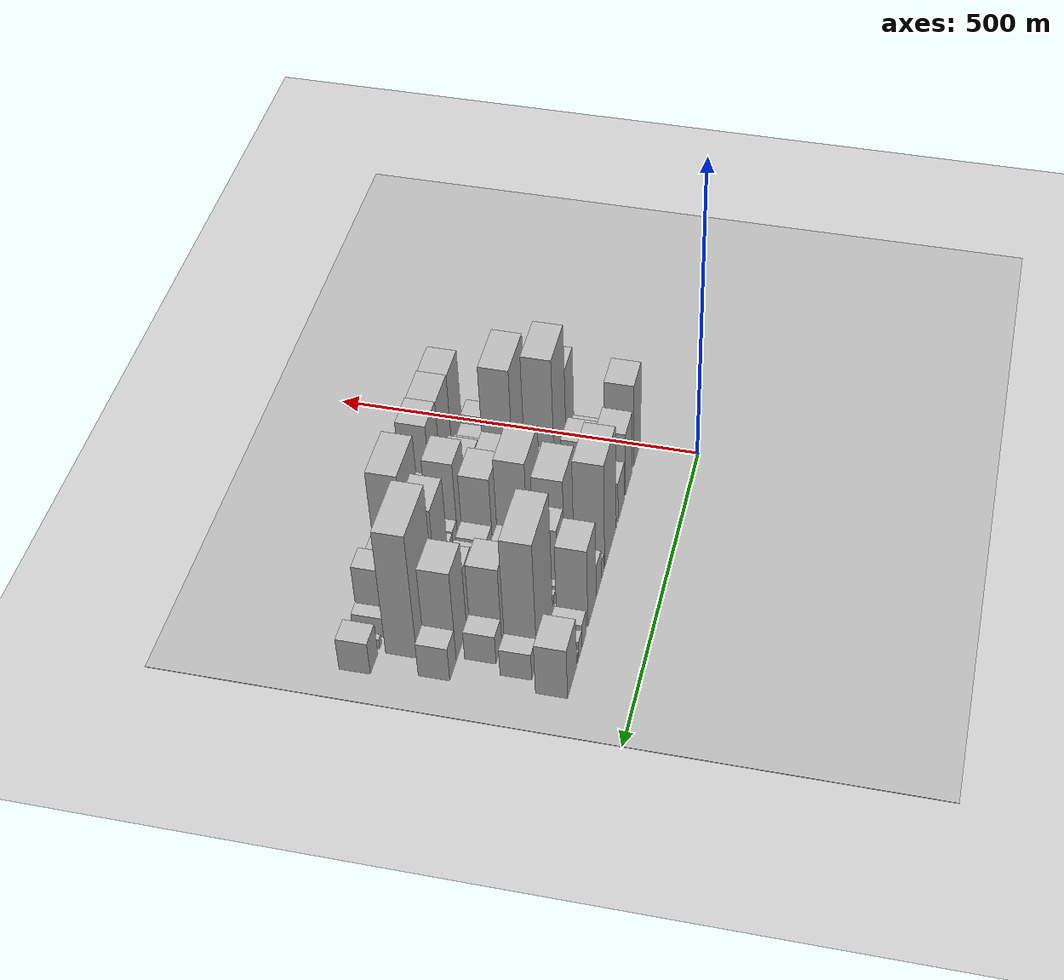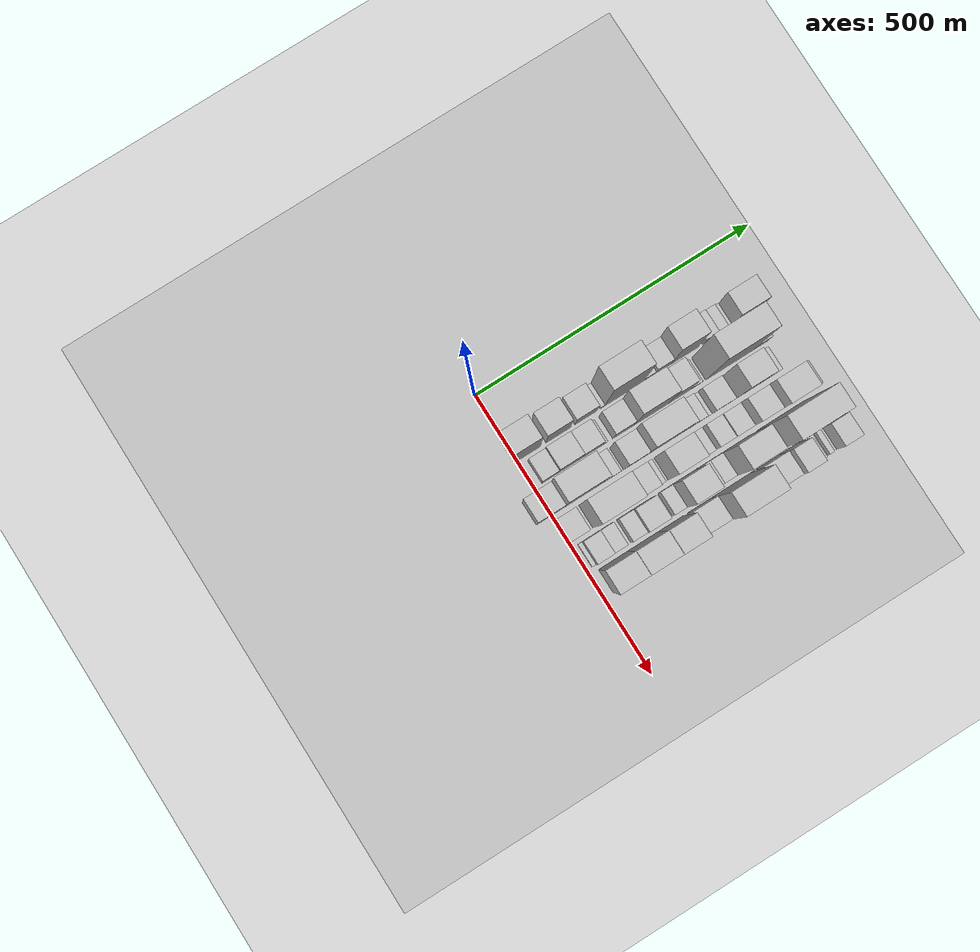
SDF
<sdf version="1.6">
 <world name="default">
  <include><name>ground_plane_1</name><uri>model://HANNAS_ground_plane</uri></include>
  <include>
   <name>ground_plane_2</name>
   <uri>model://HANNAS_ground_plane</uri>
   <pose>100 0 0  0 0 0</pose>
  </include>
  <model name="building_21">
   <static>1</static>
   <pose>100.0000 18.9838 0 0.000000 0.000000 0.000000</pose>
   <link name="link">
    <pose>0 0 75.00 0 0 0</pose>
    <collision name="collision"><geometry><box><size>40.0000 47.2922 150.0000</size></box></geometry></collision>
    <visual name="visual">
     <cast_shadows>0</cast_shadows>
     <geometry><box><size>40.0000 47.2922 150.0000</size></box></geometry>
     <material>
      <script>
       <uri>model://HANNAS_wall/materials/scripts</uri>
       <uri>model://HANNAS_wall/materials/textures</uri>
       <name>vrc/HANNAS_wall</name>
      </script>
     </material>
    </visual>
   </link>
  </model>
  <model name="building_22">
   <static>1</static>
   <pose>100.0000 74.6798 0 0.000000 0.000000 0.000000</pose>
   <link name="link">
    <pose>0 0 57.00 0 0 0</pose>
    <collision name="collision"><geometry><box><size>40.0000 44.0999 114.0000</size></box></geometry></collision>
    <visual name="visual">
     <cast_shadows>0</cast_shadows>
     <geometry><box><size>40.0000 44.0999 114.0000</size></box></geometry>
     <material>
      <script>
       <uri>model://HANNAS_wall/materials/scripts</uri>
       <uri>model://HANNAS_wall/materials/textures</uri>
       <name>vrc/HANNAS_wall</name>
      </script>
     </material>
    </visual>
   </link>
  </model>
  <model name="building_23">
   <static>1</static>
   <pose>100.0000 124.8819 0 0.000000 0.000000 0.000000</pose>
   <link name="link">
    <pose>0 0 36.00 0 0 0</pose>
    <collision name="collision"><geometry><box><size>40.0000 40.3041 72.0000</size></box></geometry></collision>
    <visual name="visual">
     <cast_shadows>0</cast_shadows>
     <geometry><box><size>40.0000 40.3041 72.0000</size></box></geometry>
     <material>
      <script>
       <uri>model://HANNAS_wall/materials/scripts</uri>
       <uri>model://HANNAS_wall/materials/textures</uri>
       <name>vrc/HANNAS_wall</name>
      </script>
     </material>
    </visual>
   </link>
  </model>
  <model name="building_24">
   <static>1</static>
   <pose>100.0000 154.7181 0 0.000000 0.000000 0.000000</pose>
   <link name="link">
    <pose>0 0 9.00 0 0 0</pose>
    <collision name="collision"><geometry><box><size>40.0000 7.3683 18.0000</size></box></geometry></collision>
    <visual name="visual">
     <cast_shadows>0</cast_shadows>
     <geometry><box><size>40.0000 7.3683 18.0000</size></box></geometry>
     <material>
      <script>
       <uri>model://HANNAS_wall/materials/scripts</uri>
       <uri>model://HANNAS_wall/materials/textures</uri>
       <name>vrc/HANNAS_wall</name>
      </script>
     </material>
    </visual>
   </link>
  </model>
  <model name="building_25">
   <static>1</static>
   <pose>100.0000 193.5216 0 0.000000 0.000000 0.000000</pose>
   <link name="link">
    <pose>0 0 94.50 0 0 0</pose>
    <collision name="collision"><geometry><box><size>40.0000 70.2388 189.0000</size></box></geometry></collision>
    <visual name="visual">
     <cast_shadows>0</cast_shadows>
     <geometry><box><size>40.0000 70.2388 189.0000</size></box></geometry>
     <material>
      <script>
       <uri>model://HANNAS_wall/materials/scripts</uri>
       <uri>model://HANNAS_wall/materials/textures</uri>
       <name>vrc/HANNAS_wall</name>
      </script>
     </material>
    </visual>
   </link>
  </model>
  <model name="building_26">
   <static>1</static>
   <pose>100.0000 240.4737 0 0.000000 0.000000 0.000000</pose>
   <link name="link">
    <pose>0 0 16.50 0 0 0</pose>
    <collision name="collision"><geometry><box><size>40.0000 17.6654 33.0000</size></box></geometry></collision>
    <visual name="visual">
     <cast_shadows>0</cast_shadows>
     <geometry><box><size>40.0000 17.6654 33.0000</size></box></geometry>
     <material>
      <script>
       <uri>model://HANNAS_wall/materials/scripts</uri>
       <uri>model://HANNAS_wall/materials/textures</uri>
       <name>vrc/HANNAS_wall</name>
      </script>
     </material>
    </visual>
   </link>
  </model>
  <model name="building_27">
   <static>1</static>
   <pose>100.0000 264.1507 0 0.000000 0.000000 0.000000</pose>
   <link name="link">
    <pose>0 0 28.50 0 0 0</pose>
    <collision name="collision"><geometry><box><size>40.0000 29.6887 57.0000</size></box></geometry></collision>
    <visual name="visual">
     <cast_shadows>0</cast_shadows>
     <geometry><box><size>40.0000 29.6887 57.0000</size></box></geometry>
     <material>
      <script>
       <uri>model://HANNAS_wall/materials/scripts</uri>
       <uri>model://HANNAS_wall/materials/textures</uri>
       <name>vrc/HANNAS_wall</name>
      </script>
     </material>
    </visual>
   </link>
  </model>
  <model name="building_28">
   <static>1</static>
   <pose>100.0000 303.5925 0 0.000000 0.000000 0.000000</pose>
   <link name="link">
    <pose>0 0 70.50 0 0 0</pose>
    <collision name="collision"><geometry><box><size>40.0000 49.1949 141.0000</size></box></geometry></collision>
    <visual name="visual">
     <cast_shadows>0</cast_shadows>
     <geometry><box><size>40.0000 49.1949 141.0000</size></box></geometry>
     <material>
      <script>
       <uri>model://HANNAS_wall/materials/scripts</uri>
       <uri>model://HANNAS_wall/materials/textures</uri>
       <name>vrc/HANNAS_wall</name>
      </script>
     </material>
    </visual>
   </link>
  </model>
  <model name="building_29">
   <static>1</static>
   <pose>100.0000 349.4941 0 0.000000 0.000000 0.000000</pose>
   <link name="link">
    <pose>0 0 21.00 0 0 0</pose>
    <collision name="collision"><geometry><box><size>40.0000 24.6083 42.0000</size></box></geometry></collision>
    <visual name="visual">
     <cast_shadows>0</cast_shadows>
     <geometry><box><size>40.0000 24.6083 42.0000</size></box></geometry>
     <material>
      <script>
       <uri>model://HANNAS_wall/materials/scripts</uri>
       <uri>model://HANNAS_wall/materials/textures</uri>
       <name>vrc/HANNAS_wall</name>
      </script>
     </material>
    </visual>
   </link>
  </model>
  <model name="building_30">
   <static>1</static>
   <pose>100.0000 371.0547 0 0.000000 0.000000 0.000000</pose>
   <link name="link">
    <pose>0 0 16.50 0 0 0</pose>
    <collision name="collision"><geometry><box><size>40.0000 18.5130 33.0000</size></box></geometry></collision>
    <visual name="visual">
     <cast_shadows>0</cast_shadows>
     <geometry><box><size>40.0000 18.5130 33.0000</size></box></geometry>
     <material>
      <script>
       <uri>model://HANNAS_wall/materials/scripts</uri>
       <uri>model://HANNAS_wall/materials/textures</uri>
       <name>vrc/HANNAS_wall</name>
      </script>
     </material>
    </visual>
   </link>
  </model>
  <model name="building_31">
   <static>1</static>
   <pose>100.0000 384.6112 0 0.000000 0.000000 0.000000</pose>
   <link name="link">
    <pose>0 0 9.00 0 0 0</pose>
    <collision name="collision"><geometry><box><size>40.0000 8.6000 18.0000</size></box></geometry></collision>
    <visual name="visual">
     <cast_shadows>0</cast_shadows>
     <geometry><box><size>40.0000 8.6000 18.0000</size></box></geometry>
     <material>
      <script>
       <uri>model://HANNAS_wall/materials/scripts</uri>
       <uri>model://HANNAS_wall/materials/textures</uri>
       <name>vrc/HANNAS_wall</name>
      </script>
     </material>
    </visual>
   </link>
  </model>
  <model name="building_32">
   <static>1</static>
   <pose>100.0000 417.4044 0 0.000000 0.000000 0.000000</pose>
   <link name="link">
    <pose>0 0 45.00 0 0 0</pose>
    <collision name="collision"><geometry><box><size>40.0000 50.9864 90.0000</size></box></geometry></collision>
    <visual name="visual">
     <cast_shadows>0</cast_shadows>
     <geometry><box><size>40.0000 50.9864 90.0000</size></box></geometry>
     <material>
      <script>
       <uri>model://HANNAS_wall/materials/scripts</uri>
       <uri>model://HANNAS_wall/materials/textures</uri>
       <name>vrc/HANNAS_wall</name>
      </script>
     </material>
    </visual>
   </link>
  </model>
  <model name="building_64">
   <static>1</static>
   <pose>149.0000 29.2394 0 0.000000 0.000000 0.000000</pose>
   <link name="link">
    <pose>0 0 27.00 0 0 0</pose>
    <collision name="collision"><geometry><box><size>40.0000 29.9875 54.0000</size></box></geometry></collision>
    <visual name="visual">
     <cast_shadows>0</cast_shadows>
     <geometry><box><size>40.0000 29.9875 54.0000</size></box></geometry>
     <material>
      <script>
       <uri>model://HANNAS_wall/materials/scripts</uri>
       <uri>model://HANNAS_wall/materials/textures</uri>
       <name>vrc/HANNAS_wall</name>
      </script>
     </material>
    </visual>
   </link>
  </model>
  <model name="building_65">
   <static>1</static>
   <pose>149.0000 65.8894 0 0.000000 0.000000 0.000000</pose>
   <link name="link">
    <pose>0 0 39.00 0 0 0</pose>
    <collision name="collision"><geometry><box><size>40.0000 43.3125 78.0000</size></box></geometry></collision>
    <visual name="visual">
     <cast_shadows>0</cast_shadows>
     <geometry><box><size>40.0000 43.3125 78.0000</size></box></geometry>
     <material>
      <script>
       <uri>model://HANNAS_wall/materials/scripts</uri>
       <uri>model://HANNAS_wall/materials/textures</uri>
       <name>vrc/HANNAS_wall</name>
      </script>
     </material>
    </visual>
   </link>
  </model>
  <model name="building_66">
   <static>1</static>
   <pose>149.0000 105.7327 0 0.000000 0.000000 0.000000</pose>
   <link name="link">
    <pose>0 0 33.00 0 0 0</pose>
    <collision name="collision"><geometry><box><size>40.0000 36.3740 66.0000</size></box></geometry></collision>
    <visual name="visual">
     <cast_shadows>0</cast_shadows>
     <geometry><box><size>40.0000 36.3740 66.0000</size></box></geometry>
     <material>
      <script>
       <uri>model://HANNAS_wall/materials/scripts</uri>
       <uri>model://HANNAS_wall/materials/textures</uri>
       <name>vrc/HANNAS_wall</name>
      </script>
     </material>
    </visual>
   </link>
  </model>
  <model name="building_67">
   <static>1</static>
   <pose>149.0000 128.1464 0 0.000000 0.000000 0.000000</pose>
   <link name="link">
    <pose>0 0 9.00 0 0 0</pose>
    <collision name="collision"><geometry><box><size>40.0000 8.4535 18.0000</size></box></geometry></collision>
    <visual name="visual">
     <cast_shadows>0</cast_shadows>
     <geometry><box><size>40.0000 8.4535 18.0000</size></box></geometry>
     <material>
      <script>
       <uri>model://HANNAS_wall/materials/scripts</uri>
       <uri>model://HANNAS_wall/materials/textures</uri>
       <name>vrc/HANNAS_wall</name>
      </script>
     </material>
    </visual>
   </link>
  </model>
  <model name="building_68">
   <static>1</static>
   <pose>149.0000 160.7705 0 0.000000 0.000000 0.000000</pose>
   <link name="link">
    <pose>0 0 36.00 0 0 0</pose>
    <collision name="collision"><geometry><box><size>40.0000 36.7947 72.0000</size></box></geometry></collision>
    <visual name="visual">
     <cast_shadows>0</cast_shadows>
     <geometry><box><size>40.0000 36.7947 72.0000</size></box></geometry>
     <material>
      <script>
       <uri>model://HANNAS_wall/materials/scripts</uri>
       <uri>model://HANNAS_wall/materials/textures</uri>
       <name>vrc/HANNAS_wall</name>
      </script>
     </material>
    </visual>
   </link>
  </model>
  <model name="building_69">
   <static>1</static>
   <pose>149.0000 210.8949 0 0.000000 0.000000 0.000000</pose>
   <link name="link">
    <pose>0 0 82.50 0 0 0</pose>
    <collision name="collision"><geometry><box><size>40.0000 63.4541 165.0000</size></box></geometry></collision>
    <visual name="visual">
     <cast_shadows>0</cast_shadows>
     <geometry><box><size>40.0000 63.4541 165.0000</size></box></geometry>
     <material>
      <script>
       <uri>model://HANNAS_wall/materials/scripts</uri>
       <uri>model://HANNAS_wall/materials/textures</uri>
       <name>vrc/HANNAS_wall</name>
      </script>
     </material>
    </visual>
   </link>
  </model>
  <model name="building_70">
   <static>1</static>
   <pose>149.0000 262.1376 0 0.000000 0.000000 0.000000</pose>
   <link name="link">
    <pose>0 0 58.50 0 0 0</pose>
    <collision name="collision"><geometry><box><size>40.0000 39.0314 117.0000</size></box></geometry></collision>
    <visual name="visual">
     <cast_shadows>0</cast_shadows>
     <geometry><box><size>40.0000 39.0314 117.0000</size></box></geometry>
     <material>
      <script>
       <uri>model://HANNAS_wall/materials/scripts</uri>
       <uri>model://HANNAS_wall/materials/textures</uri>
       <name>vrc/HANNAS_wall</name>
      </script>
     </material>
    </visual>
   </link>
  </model>
  <model name="building_71">
   <static>1</static>
   <pose>149.0000 287.4748 0 0.000000 0.000000 0.000000</pose>
   <link name="link">
    <pose>0 0 13.50 0 0 0</pose>
    <collision name="collision"><geometry><box><size>40.0000 11.6430 27.0000</size></box></geometry></collision>
    <visual name="visual">
     <cast_shadows>0</cast_shadows>
     <geometry><box><size>40.0000 11.6430 27.0000</size></box></geometry>
     <material>
      <script>
       <uri>model://HANNAS_wall/materials/scripts</uri>
       <uri>model://HANNAS_wall/materials/textures</uri>
       <name>vrc/HANNAS_wall</name>
      </script>
     </material>
    </visual>
   </link>
  </model>
  <model name="building_72">
   <static>1</static>
   <pose>149.0000 298.4466 0 0.000000 0.000000 0.000000</pose>
   <link name="link">
    <pose>0 0 10.50 0 0 0</pose>
    <collision name="collision"><geometry><box><size>40.0000 10.3007 21.0000</size></box></geometry></collision>
    <visual name="visual">
     <cast_shadows>0</cast_shadows>
     <geometry><box><size>40.0000 10.3007 21.0000</size></box></geometry>
     <material>
      <script>
       <uri>model://HANNAS_wall/materials/scripts</uri>
       <uri>model://HANNAS_wall/materials/textures</uri>
       <name>vrc/HANNAS_wall</name>
      </script>
     </material>
    </visual>
   </link>
  </model>
  <model name="building_73">
   <static>1</static>
   <pose>149.0000 354.4526 0 0.000000 0.000000 0.000000</pose>
   <link name="link">
    <pose>0 0 108.00 0 0 0</pose>
    <collision name="collision"><geometry><box><size>40.0000 85.7112 216.0000</size></box></geometry></collision>
    <visual name="visual">
     <cast_shadows>0</cast_shadows>
     <geometry><box><size>40.0000 85.7112 216.0000</size></box></geometry>
     <material>
      <script>
       <uri>model://HANNAS_wall/materials/scripts</uri>
       <uri>model://HANNAS_wall/materials/textures</uri>
       <name>vrc/HANNAS_wall</name>
      </script>
     </material>
    </visual>
   </link>
  </model>
  <model name="building_74">
   <static>1</static>
   <pose>149.0000 410.8304 0 0.000000 0.000000 0.000000</pose>
   <link name="link">
    <pose>0 0 24.00 0 0 0</pose>
    <collision name="collision"><geometry><box><size>40.0000 27.0444 48.0000</size></box></geometry></collision>
    <visual name="visual">
     <cast_shadows>0</cast_shadows>
     <geometry><box><size>40.0000 27.0444 48.0000</size></box></geometry>
     <material>
      <script>
       <uri>model://HANNAS_wall/materials/scripts</uri>
       <uri>model://HANNAS_wall/materials/textures</uri>
       <name>vrc/HANNAS_wall</name>
      </script>
     </material>
    </visual>
   </link>
  </model>
  <model name="building_110">
   <static>1</static>
   <pose>198.0000 -3.1251 0 0.000000 0.000000 0.000000</pose>
   <link name="link">
    <pose>0 0 69.00 0 0 0</pose>
    <collision name="collision"><geometry><box><size>40.0000 47.3952 138.0000</size></box></geometry></collision>
    <visual name="visual">
     <cast_shadows>0</cast_shadows>
     <geometry><box><size>40.0000 47.3952 138.0000</size></box></geometry>
     <material>
      <script>
       <uri>model://HANNAS_wall/materials/scripts</uri>
       <uri>model://HANNAS_wall/materials/textures</uri>
       <name>vrc/HANNAS_wall</name>
      </script>
     </material>
    </visual>
   </link>
  </model>
  <model name="building_111">
   <static>1</static>
   <pose>198.0000 55.0697 0 0.000000 0.000000 0.000000</pose>
   <link name="link">
    <pose>0 0 109.50 0 0 0</pose>
    <collision name="collision"><geometry><box><size>40.0000 68.9944 219.0000</size></box></geometry></collision>
    <visual name="visual">
     <cast_shadows>0</cast_shadows>
     <geometry><box><size>40.0000 68.9944 219.0000</size></box></geometry>
     <material>
      <script>
       <uri>model://HANNAS_wall/materials/scripts</uri>
       <uri>model://HANNAS_wall/materials/textures</uri>
       <name>vrc/HANNAS_wall</name>
      </script>
     </material>
    </visual>
   </link>
  </model>
  <model name="building_112">
   <static>1</static>
   <pose>198.0000 105.5584 0 0.000000 0.000000 0.000000</pose>
   <link name="link">
    <pose>0 0 27.00 0 0 0</pose>
    <collision name="collision"><geometry><box><size>40.0000 31.9829 54.0000</size></box></geometry></collision>
    <visual name="visual">
     <cast_shadows>0</cast_shadows>
     <geometry><box><size>40.0000 31.9829 54.0000</size></box></geometry>
     <material>
      <script>
       <uri>model://HANNAS_wall/materials/scripts</uri>
       <uri>model://HANNAS_wall/materials/textures</uri>
       <name>vrc/HANNAS_wall</name>
      </script>
     </material>
    </visual>
   </link>
  </model>
  <model name="building_113">
   <static>1</static>
   <pose>198.0000 148.9393 0 0.000000 0.000000 0.000000</pose>
   <link name="link">
    <pose>0 0 52.50 0 0 0</pose>
    <collision name="collision"><geometry><box><size>40.0000 36.7788 105.0000</size></box></geometry></collision>
    <visual name="visual">
     <cast_shadows>0</cast_shadows>
     <geometry><box><size>40.0000 36.7788 105.0000</size></box></geometry>
     <material>
      <script>
       <uri>model://HANNAS_wall/materials/scripts</uri>
       <uri>model://HANNAS_wall/materials/textures</uri>
       <name>vrc/HANNAS_wall</name>
      </script>
     </material>
    </visual>
   </link>
  </model>
  <model name="building_114">
   <static>1</static>
   <pose>198.0000 202.2660 0 0.000000 0.000000 0.000000</pose>
   <link name="link">
    <pose>0 0 90.00 0 0 0</pose>
    <collision name="collision"><geometry><box><size>40.0000 69.8747 180.0000</size></box></geometry></collision>
    <visual name="visual">
     <cast_shadows>0</cast_shadows>
     <geometry><box><size>40.0000 69.8747 180.0000</size></box></geometry>
     <material>
      <script>
       <uri>model://HANNAS_wall/materials/scripts</uri>
       <uri>model://HANNAS_wall/materials/textures</uri>
       <name>vrc/HANNAS_wall</name>
      </script>
     </material>
    </visual>
   </link>
  </model>
  <model name="building_115">
   <static>1</static>
   <pose>198.0000 255.5788 0 0.000000 0.000000 0.000000</pose>
   <link name="link">
    <pose>0 0 31.50 0 0 0</pose>
    <collision name="collision"><geometry><box><size>40.0000 36.7509 63.0000</size></box></geometry></collision>
    <visual name="visual">
     <cast_shadows>0</cast_shadows>
     <geometry><box><size>40.0000 36.7509 63.0000</size></box></geometry>
     <material>
      <script>
       <uri>model://HANNAS_wall/materials/scripts</uri>
       <uri>model://HANNAS_wall/materials/textures</uri>
       <name>vrc/HANNAS_wall</name>
      </script>
     </material>
    </visual>
   </link>
  </model>
  <model name="building_116">
   <static>1</static>
   <pose>198.0000 285.5694 0 0.000000 0.000000 0.000000</pose>
   <link name="link">
    <pose>0 0 7.50 0 0 0</pose>
    <collision name="collision"><geometry><box><size>40.0000 7.2301 15.0000</size></box></geometry></collision>
    <visual name="visual">
     <cast_shadows>0</cast_shadows>
     <geometry><box><size>40.0000 7.2301 15.0000</size></box></geometry>
     <material>
      <script>
       <uri>model://HANNAS_wall/materials/scripts</uri>
       <uri>model://HANNAS_wall/materials/textures</uri>
       <name>vrc/HANNAS_wall</name>
      </script>
     </material>
    </visual>
   </link>
  </model>
  <model name="building_117">
   <static>1</static>
   <pose>198.0000 306.8928 0 0.000000 0.000000 0.000000</pose>
   <link name="link">
    <pose>0 0 30.00 0 0 0</pose>
    <collision name="collision"><geometry><box><size>40.0000 35.4167 60.0000</size></box></geometry></collision>
    <visual name="visual">
     <cast_shadows>0</cast_shadows>
     <geometry><box><size>40.0000 35.4167 60.0000</size></box></geometry>
     <material>
      <script>
       <uri>model://HANNAS_wall/materials/scripts</uri>
       <uri>model://HANNAS_wall/materials/textures</uri>
       <name>vrc/HANNAS_wall</name>
      </script>
     </material>
    </visual>
   </link>
  </model>
  <model name="building_118">
   <static>1</static>
   <pose>198.0000 328.8992 0 0.000000 0.000000 0.000000</pose>
   <link name="link">
    <pose>0 0 9.00 0 0 0</pose>
    <collision name="collision"><geometry><box><size>40.0000 8.5960 18.0000</size></box></geometry></collision>
    <visual name="visual">
     <cast_shadows>0</cast_shadows>
     <geometry><box><size>40.0000 8.5960 18.0000</size></box></geometry>
     <material>
      <script>
       <uri>model://HANNAS_wall/materials/scripts</uri>
       <uri>model://HANNAS_wall/materials/textures</uri>
       <name>vrc/HANNAS_wall</name>
      </script>
     </material>
    </visual>
   </link>
  </model>
  <model name="building_119">
   <static>1</static>
   <pose>198.0000 356.1286 0 0.000000 0.000000 0.000000</pose>
   <link name="link">
    <pose>0 0 70.50 0 0 0</pose>
    <collision name="collision"><geometry><box><size>40.0000 45.8629 141.0000</size></box></geometry></collision>
    <visual name="visual">
     <cast_shadows>0</cast_shadows>
     <geometry><box><size>40.0000 45.8629 141.0000</size></box></geometry>
     <material>
      <script>
       <uri>model://HANNAS_wall/materials/scripts</uri>
       <uri>model://HANNAS_wall/materials/textures</uri>
       <name>vrc/HANNAS_wall</name>
      </script>
     </material>
    </visual>
   </link>
  </model>
  <model name="building_120">
   <static>1</static>
   <pose>198.0000 393.8148 0 0.000000 0.000000 0.000000</pose>
   <link name="link">
    <pose>0 0 25.50 0 0 0</pose>
    <collision name="collision"><geometry><box><size>40.0000 29.5095 51.0000</size></box></geometry></collision>
    <visual name="visual">
     <cast_shadows>0</cast_shadows>
     <geometry><box><size>40.0000 29.5095 51.0000</size></box></geometry>
     <material>
      <script>
       <uri>model://HANNAS_wall/materials/scripts</uri>
       <uri>model://HANNAS_wall/materials/textures</uri>
       <name>vrc/HANNAS_wall</name>
      </script>
     </material>
    </visual>
   </link>
  </model>
  <model name="building_157">
   <static>1</static>
   <pose>247.0000 18.3171 0 0.000000 0.000000 0.000000</pose>
   <link name="link">
    <pose>0 0 31.50 0 0 0</pose>
    <collision name="collision"><geometry><box><size>40.0000 34.3964 63.0000</size></box></geometry></collision>
    <visual name="visual">
     <cast_shadows>0</cast_shadows>
     <geometry><box><size>40.0000 34.3964 63.0000</size></box></geometry>
     <material>
      <script>
       <uri>model://HANNAS_wall/materials/scripts</uri>
       <uri>model://HANNAS_wall/materials/textures</uri>
       <name>vrc/HANNAS_wall</name>
      </script>
     </material>
    </visual>
   </link>
  </model>
  <model name="building_158">
   <static>1</static>
   <pose>247.0000 79.8100 0 0.000000 0.000000 0.000000</pose>
   <link name="link">
    <pose>0 0 108.00 0 0 0</pose>
    <collision name="collision"><geometry><box><size>40.0000 72.5892 216.0000</size></box></geometry></collision>
    <visual name="visual">
     <cast_shadows>0</cast_shadows>
     <geometry><box><size>40.0000 72.5892 216.0000</size></box></geometry>
     <material>
      <script>
       <uri>model://HANNAS_wall/materials/scripts</uri>
       <uri>model://HANNAS_wall/materials/textures</uri>
       <name>vrc/HANNAS_wall</name>
      </script>
     </material>
    </visual>
   </link>
  </model>
  <model name="building_159">
   <static>1</static>
   <pose>247.0000 135.9967 0 0.000000 0.000000 0.000000</pose>
   <link name="link">
    <pose>0 0 51.00 0 0 0</pose>
    <collision name="collision"><geometry><box><size>40.0000 39.7842 102.0000</size></box></geometry></collision>
    <visual name="visual">
     <cast_shadows>0</cast_shadows>
     <geometry><box><size>40.0000 39.7842 102.0000</size></box></geometry>
     <material>
      <script>
       <uri>model://HANNAS_wall/materials/scripts</uri>
       <uri>model://HANNAS_wall/materials/textures</uri>
       <name>vrc/HANNAS_wall</name>
      </script>
     </material>
    </visual>
   </link>
  </model>
  <model name="building_160">
   <static>1</static>
   <pose>247.0000 168.8043 0 0.000000 0.000000 0.000000</pose>
   <link name="link">
    <pose>0 0 10.50 0 0 0</pose>
    <collision name="collision"><geometry><box><size>40.0000 9.8311 21.0000</size></box></geometry></collision>
    <visual name="visual">
     <cast_shadows>0</cast_shadows>
     <geometry><box><size>40.0000 9.8311 21.0000</size></box></geometry>
     <material>
      <script>
       <uri>model://HANNAS_wall/materials/scripts</uri>
       <uri>model://HANNAS_wall/materials/textures</uri>
       <name>vrc/HANNAS_wall</name>
      </script>
     </material>
    </visual>
   </link>
  </model>
  <model name="building_161">
   <static>1</static>
   <pose>247.0000 205.0993 0 0.000000 0.000000 0.000000</pose>
   <link name="link">
    <pose>0 0 67.50 0 0 0</pose>
    <collision name="collision"><geometry><box><size>40.0000 50.7588 135.0000</size></box></geometry></collision>
    <visual name="visual">
     <cast_shadows>0</cast_shadows>
     <geometry><box><size>40.0000 50.7588 135.0000</size></box></geometry>
     <material>
      <script>
       <uri>model://HANNAS_wall/materials/scripts</uri>
       <uri>model://HANNAS_wall/materials/textures</uri>
       <name>vrc/HANNAS_wall</name>
      </script>
     </material>
    </visual>
   </link>
  </model>
  <model name="building_162">
   <static>1</static>
   <pose>247.0000 244.6299 0 0.000000 0.000000 0.000000</pose>
   <link name="link">
    <pose>0 0 25.50 0 0 0</pose>
    <collision name="collision"><geometry><box><size>40.0000 28.3024 51.0000</size></box></geometry></collision>
    <visual name="visual">
     <cast_shadows>0</cast_shadows>
     <geometry><box><size>40.0000 28.3024 51.0000</size></box></geometry>
     <material>
      <script>
       <uri>model://HANNAS_wall/materials/scripts</uri>
       <uri>model://HANNAS_wall/materials/textures</uri>
       <name>vrc/HANNAS_wall</name>
      </script>
     </material>
    </visual>
   </link>
  </model>
  <model name="building_163">
   <static>1</static>
   <pose>247.0000 280.2317 0 0.000000 0.000000 0.000000</pose>
   <link name="link">
    <pose>0 0 27.00 0 0 0</pose>
    <collision name="collision"><geometry><box><size>40.0000 28.9011 54.0000</size></box></geometry></collision>
    <visual name="visual">
     <cast_shadows>0</cast_shadows>
     <geometry><box><size>40.0000 28.9011 54.0000</size></box></geometry>
     <material>
      <script>
       <uri>model://HANNAS_wall/materials/scripts</uri>
       <uri>model://HANNAS_wall/materials/textures</uri>
       <name>vrc/HANNAS_wall</name>
      </script>
     </material>
    </visual>
   </link>
  </model>
  <model name="building_164">
   <static>1</static>
   <pose>247.0000 310.3174 0 0.000000 0.000000 0.000000</pose>
   <link name="link">
    <pose>0 0 30.00 0 0 0</pose>
    <collision name="collision"><geometry><box><size>40.0000 31.2704 60.0000</size></box></geometry></collision>
    <visual name="visual">
     <cast_shadows>0</cast_shadows>
     <geometry><box><size>40.0000 31.2704 60.0000</size></box></geometry>
     <material>
      <script>
       <uri>model://HANNAS_wall/materials/scripts</uri>
       <uri>model://HANNAS_wall/materials/textures</uri>
       <name>vrc/HANNAS_wall</name>
      </script>
     </material>
    </visual>
   </link>
  </model>
  <model name="building_165">
   <static>1</static>
   <pose>247.0000 344.8641 0 0.000000 0.000000 0.000000</pose>
   <link name="link">
    <pose>0 0 57.00 0 0 0</pose>
    <collision name="collision"><geometry><box><size>40.0000 37.8228 114.0000</size></box></geometry></collision>
    <visual name="visual">
     <cast_shadows>0</cast_shadows>
     <geometry><box><size>40.0000 37.8228 114.0000</size></box></geometry>
     <material>
      <script>
       <uri>model://HANNAS_wall/materials/scripts</uri>
       <uri>model://HANNAS_wall/materials/textures</uri>
       <name>vrc/HANNAS_wall</name>
      </script>
     </material>
    </visual>
   </link>
  </model>
  <model name="building_166">
   <static>1</static>
   <pose>247.0000 389.1455 0 0.000000 0.000000 0.000000</pose>
   <link name="link">
    <pose>0 0 81.00 0 0 0</pose>
    <collision name="collision"><geometry><box><size>40.0000 50.7401 162.0000</size></box></geometry></collision>
    <visual name="visual">
     <cast_shadows>0</cast_shadows>
     <geometry><box><size>40.0000 50.7401 162.0000</size></box></geometry>
     <material>
      <script>
       <uri>model://HANNAS_wall/materials/scripts</uri>
       <uri>model://HANNAS_wall/materials/textures</uri>
       <name>vrc/HANNAS_wall</name>
      </script>
     </material>
    </visual>
   </link>
  </model>
  <model name="building_167">
   <static>1</static>
   <pose>247.0000 430.0458 0 0.000000 0.000000 0.000000</pose>
   <link name="link">
    <pose>0 0 30.00 0 0 0</pose>
    <collision name="collision"><geometry><box><size>40.0000 31.0604 60.0000</size></box></geometry></collision>
    <visual name="visual">
     <cast_shadows>0</cast_shadows>
     <geometry><box><size>40.0000 31.0604 60.0000</size></box></geometry>
     <material>
      <script>
       <uri>model://HANNAS_wall/materials/scripts</uri>
       <uri>model://HANNAS_wall/materials/textures</uri>
       <name>vrc/HANNAS_wall</name>
      </script>
     </material>
    </visual>
   </link>
  </model>
  <model name="building_201">
   <static>1</static>
   <pose>296.0000 13.8575 0 0.000000 0.000000 0.000000</pose>
   <link name="link">
    <pose>0 0 7.50 0 0 0</pose>
    <collision name="collision"><geometry><box><size>40.0000 7.2574 15.0000</size></box></geometry></collision>
    <visual name="visual">
     <cast_shadows>0</cast_shadows>
     <geometry><box><size>40.0000 7.2574 15.0000</size></box></geometry>
     <material>
      <script>
       <uri>model://HANNAS_wall/materials/scripts</uri>
       <uri>model://HANNAS_wall/materials/textures</uri>
       <name>vrc/HANNAS_wall</name>
      </script>
     </material>
    </visual>
   </link>
  </model>
  <model name="building_202">
   <static>1</static>
   <pose>296.0000 32.7285 0 0.000000 0.000000 0.000000</pose>
   <link name="link">
    <pose>0 0 28.50 0 0 0</pose>
    <collision name="collision"><geometry><box><size>40.0000 30.4847 57.0000</size></box></geometry></collision>
    <visual name="visual">
     <cast_shadows>0</cast_shadows>
     <geometry><box><size>40.0000 30.4847 57.0000</size></box></geometry>
     <material>
      <script>
       <uri>model://HANNAS_wall/materials/scripts</uri>
       <uri>model://HANNAS_wall/materials/textures</uri>
       <name>vrc/HANNAS_wall</name>
      </script>
     </material>
    </visual>
   </link>
  </model>
  <model name="building_203">
   <static>1</static>
   <pose>296.0000 60.1076 0 0.000000 0.000000 0.000000</pose>
   <link name="link">
    <pose>0 0 21.00 0 0 0</pose>
    <collision name="collision"><geometry><box><size>40.0000 24.2734 42.0000</size></box></geometry></collision>
    <visual name="visual">
     <cast_shadows>0</cast_shadows>
     <geometry><box><size>40.0000 24.2734 42.0000</size></box></geometry>
     <material>
      <script>
       <uri>model://HANNAS_wall/materials/scripts</uri>
       <uri>model://HANNAS_wall/materials/textures</uri>
       <name>vrc/HANNAS_wall</name>
      </script>
     </material>
    </visual>
   </link>
  </model>
  <model name="building_204">
   <static>1</static>
   <pose>296.0000 93.2965 0 0.000000 0.000000 0.000000</pose>
   <link name="link">
    <pose>0 0 25.50 0 0 0</pose>
    <collision name="collision"><geometry><box><size>40.0000 26.1045 51.0000</size></box></geometry></collision>
    <visual name="visual">
     <cast_shadows>0</cast_shadows>
     <geometry><box><size>40.0000 26.1045 51.0000</size></box></geometry>
     <material>
      <script>
       <uri>model://HANNAS_wall/materials/scripts</uri>
       <uri>model://HANNAS_wall/materials/textures</uri>
       <name>vrc/HANNAS_wall</name>
      </script>
     </material>
    </visual>
   </link>
  </model>
  <model name="building_205">
   <static>1</static>
   <pose>296.0000 125.6176 0 0.000000 0.000000 0.000000</pose>
   <link name="link">
    <pose>0 0 37.50 0 0 0</pose>
    <collision name="collision"><geometry><box><size>40.0000 38.5375 75.0000</size></box></geometry></collision>
    <visual name="visual">
     <cast_shadows>0</cast_shadows>
     <geometry><box><size>40.0000 38.5375 75.0000</size></box></geometry>
     <material>
      <script>
       <uri>model://HANNAS_wall/materials/scripts</uri>
       <uri>model://HANNAS_wall/materials/textures</uri>
       <name>vrc/HANNAS_wall</name>
      </script>
     </material>
    </visual>
   </link>
  </model>
  <model name="building_206">
   <static>1</static>
   <pose>296.0000 165.8434 0 0.000000 0.000000 0.000000</pose>
   <link name="link">
    <pose>0 0 21.00 0 0 0</pose>
    <collision name="collision"><geometry><box><size>40.0000 21.9142 42.0000</size></box></geometry></collision>
    <visual name="visual">
     <cast_shadows>0</cast_shadows>
     <geometry><box><size>40.0000 21.9142 42.0000</size></box></geometry>
     <material>
      <script>
       <uri>model://HANNAS_wall/materials/scripts</uri>
       <uri>model://HANNAS_wall/materials/textures</uri>
       <name>vrc/HANNAS_wall</name>
      </script>
     </material>
    </visual>
   </link>
  </model>
  <model name="building_207">
   <static>1</static>
   <pose>296.0000 199.5904 0 0.000000 0.000000 0.000000</pose>
   <link name="link">
    <pose>0 0 72.00 0 0 0</pose>
    <collision name="collision"><geometry><box><size>40.0000 45.5798 144.0000</size></box></geometry></collision>
    <visual name="visual">
     <cast_shadows>0</cast_shadows>
     <geometry><box><size>40.0000 45.5798 144.0000</size></box></geometry>
     <material>
      <script>
       <uri>model://HANNAS_wall/materials/scripts</uri>
       <uri>model://HANNAS_wall/materials/textures</uri>
       <name>vrc/HANNAS_wall</name>
      </script>
     </material>
    </visual>
   </link>
  </model>
  <model name="building_208">
   <static>1</static>
   <pose>296.0000 232.9502 0 0.000000 0.000000 0.000000</pose>
   <link name="link">
    <pose>0 0 21.00 0 0 0</pose>
    <collision name="collision"><geometry><box><size>40.0000 21.1398 42.0000</size></box></geometry></collision>
    <visual name="visual">
     <cast_shadows>0</cast_shadows>
     <geometry><box><size>40.0000 21.1398 42.0000</size></box></geometry>
     <material>
      <script>
       <uri>model://HANNAS_wall/materials/scripts</uri>
       <uri>model://HANNAS_wall/materials/textures</uri>
       <name>vrc/HANNAS_wall</name>
      </script>
     </material>
    </visual>
   </link>
  </model>
  <model name="building_209">
   <static>1</static>
   <pose>296.0000 255.1170 0 0.000000 0.000000 0.000000</pose>
   <link name="link">
    <pose>0 0 19.50 0 0 0</pose>
    <collision name="collision"><geometry><box><size>40.0000 23.1939 39.0000</size></box></geometry></collision>
    <visual name="visual">
     <cast_shadows>0</cast_shadows>
     <geometry><box><size>40.0000 23.1939 39.0000</size></box></geometry>
     <material>
      <script>
       <uri>model://HANNAS_wall/materials/scripts</uri>
       <uri>model://HANNAS_wall/materials/textures</uri>
       <name>vrc/HANNAS_wall</name>
      </script>
     </material>
    </visual>
   </link>
  </model>
  <model name="building_210">
   <static>1</static>
   <pose>296.0000 295.3080 0 0.000000 0.000000 0.000000</pose>
   <link name="link">
    <pose>0 0 82.50 0 0 0</pose>
    <collision name="collision"><geometry><box><size>40.0000 57.1881 165.0000</size></box></geometry></collision>
    <visual name="visual">
     <cast_shadows>0</cast_shadows>
     <geometry><box><size>40.0000 57.1881 165.0000</size></box></geometry>
     <material>
      <script>
       <uri>model://HANNAS_wall/materials/scripts</uri>
       <uri>model://HANNAS_wall/materials/textures</uri>
       <name>vrc/HANNAS_wall</name>
      </script>
     </material>
    </visual>
   </link>
  </model>
  <model name="building_211">
   <static>1</static>
   <pose>296.0000 376.6716 0 0.000000 0.000000 0.000000</pose>
   <link name="link">
    <pose>0 0 111.00 0 0 0</pose>
    <collision name="collision"><geometry><box><size>40.0000 85.5390 222.0000</size></box></geometry></collision>
    <visual name="visual">
     <cast_shadows>0</cast_shadows>
     <geometry><box><size>40.0000 85.5390 222.0000</size></box></geometry>
     <material>
      <script>
       <uri>model://HANNAS_wall/materials/scripts</uri>
       <uri>model://HANNAS_wall/materials/textures</uri>
       <name>vrc/HANNAS_wall</name>
      </script>
     </material>
    </visual>
   </link>
  </model>
  <model name="building_247">
   <static>1</static>
   <pose>345.0000 42.5585 0 0.000000 0.000000 0.000000</pose>
   <link name="link">
    <pose>0 0 72.00 0 0 0</pose>
    <collision name="collision"><geometry><box><size>40.0000 51.4992 144.0000</size></box></geometry></collision>
    <visual name="visual">
     <cast_shadows>0</cast_shadows>
     <geometry><box><size>40.0000 51.4992 144.0000</size></box></geometry>
     <material>
      <script>
       <uri>model://HANNAS_wall/materials/scripts</uri>
       <uri>model://HANNAS_wall/materials/textures</uri>
       <name>vrc/HANNAS_wall</name>
      </script>
     </material>
    </visual>
   </link>
  </model>
  <model name="building_248">
   <static>1</static>
   <pose>345.0000 95.6468 0 0.000000 0.000000 0.000000</pose>
   <link name="link">
    <pose>0 0 73.50 0 0 0</pose>
    <collision name="collision"><geometry><box><size>40.0000 54.6774 147.0000</size></box></geometry></collision>
    <visual name="visual">
     <cast_shadows>0</cast_shadows>
     <geometry><box><size>40.0000 54.6774 147.0000</size></box></geometry>
     <material>
      <script>
       <uri>model://HANNAS_wall/materials/scripts</uri>
       <uri>model://HANNAS_wall/materials/textures</uri>
       <name>vrc/HANNAS_wall</name>
      </script>
     </material>
    </visual>
   </link>
  </model>
  <model name="building_249">
   <static>1</static>
   <pose>345.0000 146.3424 0 0.000000 0.000000 0.000000</pose>
   <link name="link">
    <pose>0 0 75.00 0 0 0</pose>
    <collision name="collision"><geometry><box><size>40.0000 46.7139 150.0000</size></box></geometry></collision>
    <visual name="visual">
     <cast_shadows>0</cast_shadows>
     <geometry><box><size>40.0000 46.7139 150.0000</size></box></geometry>
     <material>
      <script>
       <uri>model://HANNAS_wall/materials/scripts</uri>
       <uri>model://HANNAS_wall/materials/textures</uri>
       <name>vrc/HANNAS_wall</name>
      </script>
     </material>
    </visual>
   </link>
  </model>
  <model name="building_250">
   <static>1</static>
   <pose>345.0000 198.2382 0 0.000000 0.000000 0.000000</pose>
   <link name="link">
    <pose>0 0 36.00 0 0 0</pose>
    <collision name="collision"><geometry><box><size>40.0000 43.0777 72.0000</size></box></geometry></collision>
    <visual name="visual">
     <cast_shadows>0</cast_shadows>
     <geometry><box><size>40.0000 43.0777 72.0000</size></box></geometry>
     <material>
      <script>
       <uri>model://HANNAS_wall/materials/scripts</uri>
       <uri>model://HANNAS_wall/materials/textures</uri>
       <name>vrc/HANNAS_wall</name>
      </script>
     </material>
    </visual>
   </link>
  </model>
  <model name="building_251">
   <static>1</static>
   <pose>345.0000 256.0894 0 0.000000 0.000000 0.000000</pose>
   <link name="link">
    <pose>0 0 91.50 0 0 0</pose>
    <collision name="collision"><geometry><box><size>40.0000 72.6246 183.0000</size></box></geometry></collision>
    <visual name="visual">
     <cast_shadows>0</cast_shadows>
     <geometry><box><size>40.0000 72.6246 183.0000</size></box></geometry>
     <material>
      <script>
       <uri>model://HANNAS_wall/materials/scripts</uri>
       <uri>model://HANNAS_wall/materials/textures</uri>
       <name>vrc/HANNAS_wall</name>
      </script>
     </material>
    </visual>
   </link>
  </model>
  <model name="building_252">
   <static>1</static>
   <pose>345.0000 295.9685 0 0.000000 0.000000 0.000000</pose>
   <link name="link">
    <pose>0 0 7.50 0 0 0</pose>
    <collision name="collision"><geometry><box><size>40.0000 7.1337 15.0000</size></box></geometry></collision>
    <visual name="visual">
     <cast_shadows>0</cast_shadows>
     <geometry><box><size>40.0000 7.1337 15.0000</size></box></geometry>
     <material>
      <script>
       <uri>model://HANNAS_wall/materials/scripts</uri>
       <uri>model://HANNAS_wall/materials/textures</uri>
       <name>vrc/HANNAS_wall</name>
      </script>
     </material>
    </visual>
   </link>
  </model>
  <model name="building_253">
   <static>1</static>
   <pose>345.0000 321.6853 0 0.000000 0.000000 0.000000</pose>
   <link name="link">
    <pose>0 0 37.50 0 0 0</pose>
    <collision name="collision"><geometry><box><size>40.0000 44.2998 75.0000</size></box></geometry></collision>
    <visual name="visual">
     <cast_shadows>0</cast_shadows>
     <geometry><box><size>40.0000 44.2998 75.0000</size></box></geometry>
     <material>
      <script>
       <uri>model://HANNAS_wall/materials/scripts</uri>
       <uri>model://HANNAS_wall/materials/textures</uri>
       <name>vrc/HANNAS_wall</name>
      </script>
     </material>
    </visual>
   </link>
  </model>
  <model name="building_254">
   <static>1</static>
   <pose>345.0000 360.2425 0 0.000000 0.000000 0.000000</pose>
   <link name="link">
    <pose>0 0 51.00 0 0 0</pose>
    <collision name="collision"><geometry><box><size>40.0000 32.8147 102.0000</size></box></geometry></collision>
    <visual name="visual">
     <cast_shadows>0</cast_shadows>
     <geometry><box><size>40.0000 32.8147 102.0000</size></box></geometry>
     <material>
      <script>
       <uri>model://HANNAS_wall/materials/scripts</uri>
       <uri>model://HANNAS_wall/materials/textures</uri>
       <name>vrc/HANNAS_wall</name>
      </script>
     </material>
    </visual>
   </link>
  </model>
  <model name="building_255">
   <static>1</static>
   <pose>345.0000 386.3641 0 0.000000 0.000000 0.000000</pose>
   <link name="link">
    <pose>0 0 18.00 0 0 0</pose>
    <collision name="collision"><geometry><box><size>40.0000 19.4284 36.0000</size></box></geometry></collision>
    <visual name="visual">
     <cast_shadows>0</cast_shadows>
     <geometry><box><size>40.0000 19.4284 36.0000</size></box></geometry>
     <material>
      <script>
       <uri>model://HANNAS_wall/materials/scripts</uri>
       <uri>model://HANNAS_wall/materials/textures</uri>
       <name>vrc/HANNAS_wall</name>
      </script>
     </material>
    </visual>
   </link>
  </model>
  <model name="building_256">
   <static>1</static>
   <pose>345.0000 410.4124 0 0.000000 0.000000 0.000000</pose>
   <link name="link">
    <pose>0 0 9.00 0 0 0</pose>
    <collision name="collision"><geometry><box><size>40.0000 8.6682 18.0000</size></box></geometry></collision>
    <visual name="visual">
     <cast_shadows>0</cast_shadows>
     <geometry><box><size>40.0000 8.6682 18.0000</size></box></geometry>
     <material>
      <script>
       <uri>model://HANNAS_wall/materials/scripts</uri>
       <uri>model://HANNAS_wall/materials/textures</uri>
       <name>vrc/HANNAS_wall</name>
      </script>
     </material>
    </visual>
   </link>
  </model>
  <model name="building_257">
   <static>1</static>
   <pose>345.0000 439.0763 0 0.000000 0.000000 0.000000</pose>
   <link name="link">
    <pose>0 0 28.50 0 0 0</pose>
    <collision name="collision"><geometry><box><size>40.0000 32.6596 57.0000</size></box></geometry></collision>
    <visual name="visual">
     <cast_shadows>0</cast_shadows>
     <geometry><box><size>40.0000 32.6596 57.0000</size></box></geometry>
     <material>
      <script>
       <uri>model://HANNAS_wall/materials/scripts</uri>
       <uri>model://HANNAS_wall/materials/textures</uri>
       <name>vrc/HANNAS_wall</name>
      </script>
     </material>
    </visual>
   </link>
  </model>
 </world>
</sdf>
